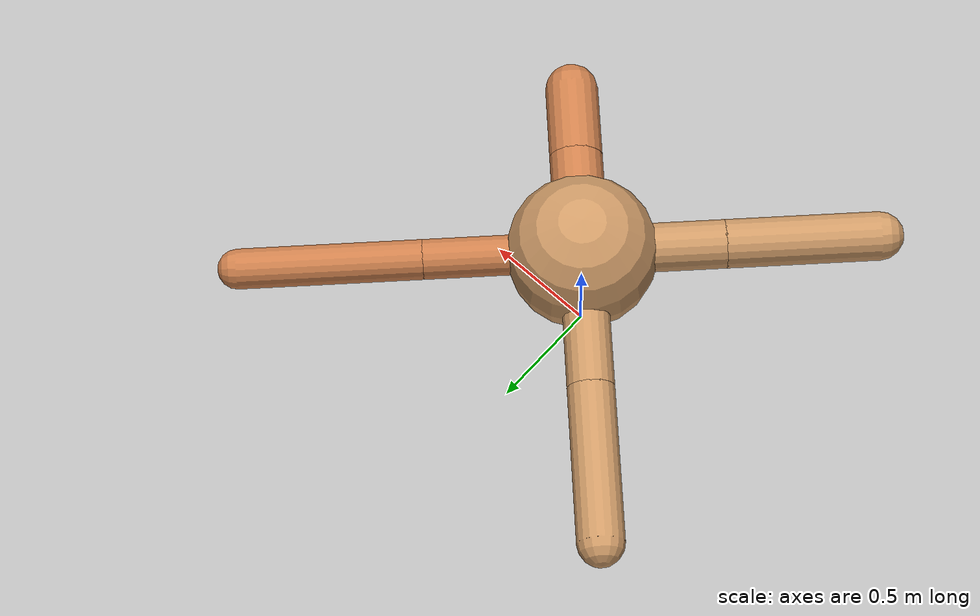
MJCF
<?xml version="1.0" ?>
<mujoco model="ant">

	<compiler angle="degree" coordinate="local" inertiafromgeom="true"/>

	<option integrator="RK4" timestep="0.01"/>

	<custom>

		<numeric data="0.0 0.0 0.55 1.0 0.0 0.0 0.0 0.0 1.0 0.0 -1.0 0.0 -1.0 0.0 1.0" name="init_qpos"/>

	</custom>

	<default>

		<joint armature="1" damping="1" limited="true"/>

		<geom conaffinity="0" condim="3" density="5.0" friction="1.5 0.1 0.1" margin="0.01" rgba="0.8 0.6 0.4 1"/>

	</default>

	<worldbody>

		<body name="torso" pos="0 0 0.75">

			<geom name="torso_geom" pos="0 0 0" size="0.3275098837583643" type="sphere"/>

			<!--joint armature="0" damping="0" limited="false" margin="0.01" name="root" pos="0 0 0" type="free"/-->

			<body name="front_left_leg" pos="0 0 0">

				<geom fromto="0 0 0 0.2 0.2 0" name="aux_1_geom" size="0.086152682365482" type="capsule" rgba=".8 .5 .3 1"/>

				<body name="aux_1" pos="0.2 0.2 0">

					<joint axis="0 0 1" name="hip_1" pos="0.0 0.0 0.0" range="-40 40" type="hinge"/>

					<geom fromto="0 0 0 0.2788287147577133 0.2788287147577133 0" name="left_leg_geom" size="0.086152682365482" type="capsule" rgba=".8 .5 .3 1"/>

					<body pos="0.2788287147577133 0.2788287147577133 0" name="front_left_foot">

						<joint axis="-1 1 0" name="ankle_1" pos="0.0 0.0 0.0" range="30 100" type="hinge"/>

						<geom fromto="0 0 0 0.5576574295154266 0.5576574295154266 0" name="left_ankle_geom" size="0.086152682365482" type="capsule" rgba=".8 .5 .3 1"/>

					</body>

				</body>

			</body>

			<body name="front_right_leg" pos="0 0 0">

				<geom fromto="0 0 0 -0.2 0.2 0" name="aux_2_geom" size="0.10136036319468654" type="capsule"/>

				<body name="aux_2" pos="-0.2 0.2 0">

					<joint axis="0 0 1" name="hip_2" pos="0.0 0.0 0.0" range="-40 40" type="hinge"/>

					<geom fromto="0 0 0 -0.23809791725922774 0.23809791725922774 0" name="right_leg_geom" size="0.10136036319468654" type="capsule"/>

					<body pos="-0.23809791725922774 0.23809791725922774 0" name="front_right_foot">

						<joint axis="1 1 0" name="ankle_2" pos="0.0 0.0 0.0" range="-100 -30" type="hinge"/>

						<geom fromto="0 0 0 -0.4761958345184555 0.4761958345184555 0" name="right_ankle_geom" size="0.10136036319468654" type="capsule"/>

					</body>

				</body>

			</body>

			<body name="left_back_leg" pos="0 0 0">

				<geom fromto="0 0 0 -0.2 -0.2 0" name="aux_3_geom" size="0.1048605209121829" type="capsule"/>

				<body name="aux_3" pos="-0.2 -0.2 0">

					<joint axis="0 0 1" name="hip_3" pos="0.0 0.0 0.0" range="-40 40" type="hinge"/>

					<geom fromto="0 0 0 -0.23363670670535167 -0.23363670670535167 0" name="back_leg_geom" size="0.1048605209121829" type="capsule"/>

					<body pos="-0.23363670670535167 -0.23363670670535167 0" name="left_back_foot">

						<joint axis="-1 1 0" name="ankle_3" pos="0.0 0.0 0.0" range="-100 -30" type="hinge"/>

						<geom fromto="0 0 0 -0.46727341341070333 -0.46727341341070333 0" name="third_ankle_geom" size="0.1048605209121829" type="capsule"/>

					</body>

				</body>

			</body>

			<body name="right_back_leg" pos="0 0 0">

				<geom fromto="0 0 0 0.2 -0.2 0" name="aux_4_geom" size="0.11579340271508862" type="capsule" rgba=".8 .5 .3 1"/>

				<body name="aux_4" pos="0.2 -0.2 0">

					<joint axis="0 0 1" name="hip_4" pos="0.0 0.0 0.0" range="-40 40" type="hinge"/>

					<geom fromto="0 0 0 0.11473561033318239 -0.11473561033318239 0" name="rightback_leg_geom" size="0.11579340271508862" type="capsule" rgba=".8 .5 .3 1"/>

					<body pos="0.11473561033318239 -0.11473561033318239 0" name="right_back_foot">

						<joint axis="1 1 0" name="ankle_4" pos="0.0 0.0 0.0" range="30 100" type="hinge"/>

						<geom fromto="0 0 0 0.22947122066636477 -0.22947122066636477 0" name="fourth_ankle_geom" size="0.11579340271508862" type="capsule" rgba=".8 .5 .3 1"/>

					</body>

				</body>

			</body>

		</body>

	</worldbody>

	<actuator>

		<motor ctrllimited="true" ctrlrange="-1.0 1.0" joint="hip_4" gear="150"/>

		<motor ctrllimited="true" ctrlrange="-1.0 1.0" joint="ankle_4" gear="150"/>

		<motor ctrllimited="true" ctrlrange="-1.0 1.0" joint="hip_1" gear="150"/>

		<motor ctrllimited="true" ctrlrange="-1.0 1.0" joint="ankle_1" gear="150"/>

		<motor ctrllimited="true" ctrlrange="-1.0 1.0" joint="hip_2" gear="150"/>

		<motor ctrllimited="true" ctrlrange="-1.0 1.0" joint="ankle_2" gear="150"/>

		<motor ctrllimited="true" ctrlrange="-1.0 1.0" joint="hip_3" gear="150"/>

		<motor ctrllimited="true" ctrlrange="-1.0 1.0" joint="ankle_3" gear="150"/>

	</actuator>

</mujoco>
